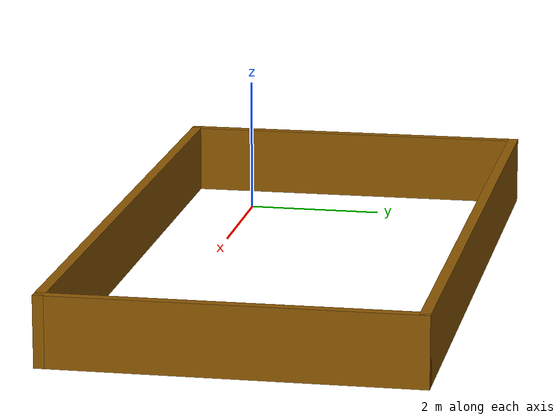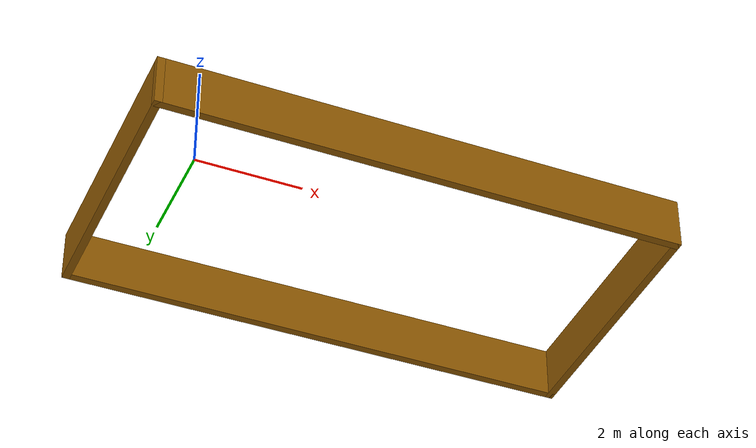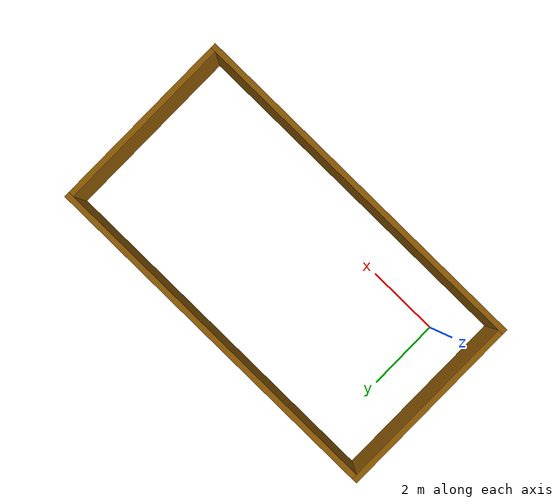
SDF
<?xml version='1.0'?>
<sdf version='1.7'>
  <model name='fence'>
    <pose>3.865 1.44 0 0 -0 0</pose>
    <link name='Wall_20'>
      <collision name='Wall_20_Collision'>
        <geometry>
          <box>
            <size>10 0.15 1</size>
          </box>
        </geometry>
        <pose>0 0 0.5 0 -0 0</pose>
      </collision>
      <visual name='Wall_20_Visual'>
        <pose>0 0 0.5 0 -0 0</pose>
        <geometry>
          <box>
            <size>10 0.15 1</size>
          </box>
        </geometry>
        <material>
          <script>
            <uri>file://media/materials/scripts/gazebo.material</uri>
            <name>Gazebo/Grey</name>
          </script>
          <ambient>0.560784 0.34902 0.00784314 1</ambient>
        </material>
        <meta>
          <layer>0</layer>
        </meta>
      </visual>
      <pose>-0 -2.55 0 0 -0 3.14159</pose>
    </link>
    <link name='Wall_22'>
      <collision name='Wall_22_Collision'>
        <geometry>
          <box>
            <size>5.25 0.15 1</size>
          </box>
        </geometry>
        <pose>0 0 0.5 0 -0 0</pose>
      </collision>
      <visual name='Wall_22_Visual'>
        <pose>0 0 0.5 0 -0 0</pose>
        <geometry>
          <box>
            <size>5.25 0.15 1</size>
          </box>
        </geometry>
        <material>
          <script>
            <uri>file://media/materials/scripts/gazebo.material</uri>
            <name>Gazebo/Grey</name>
          </script>
          <ambient>0.560784 0.34902 0.00784314 1</ambient>
        </material>
        <meta>
          <layer>0</layer>
        </meta>
      </visual>
      <pose>-4.925 -0 0 0 -0 1.5708</pose>
    </link>
    <link name='Wall_23'>
      <collision name='Wall_23_Collision'>
        <geometry>
          <box>
            <size>10 0.15 1</size>
          </box>
        </geometry>
        <pose>0 0 0.5 0 -0 0</pose>
      </collision>
      <visual name='Wall_23_Visual'>
        <pose>0 0 0.5 0 -0 0</pose>
        <geometry>
          <box>
            <size>10 0.15 1</size>
          </box>
        </geometry>
        <material>
          <script>
            <uri>file://media/materials/scripts/gazebo.material</uri>
            <name>Gazebo/Grey</name>
          </script>
          <ambient>0.560784 0.34902 0.00784314 1</ambient>
        </material>
        <meta>
          <layer>0</layer>
        </meta>
      </visual>
      <pose>-0 2.55 0 0 -0 0</pose>
    </link>
    <link name='Wall_24'>
      <collision name='Wall_24_Collision'>
        <geometry>
          <box>
            <size>5.25 0.15 1</size>
          </box>
        </geometry>
        <pose>0 0 0.5 0 -0 0</pose>
      </collision>
      <visual name='Wall_24_Visual'>
        <pose>0 0 0.5 0 -0 0</pose>
        <geometry>
          <box>
            <size>5.25 0.15 1</size>
          </box>
        </geometry>
        <material>
          <script>
            <uri>file://media/materials/scripts/gazebo.material</uri>
            <name>Gazebo/Grey</name>
          </script>
          <ambient>0.560784 0.34902 0.00784314 1</ambient>
        </material>
        <meta>
          <layer>0</layer>
        </meta>
      </visual>
      <pose>4.925 -0 0 0 -0 -1.5708</pose>
    </link>
    <static>1</static>
  </model>
</sdf>
